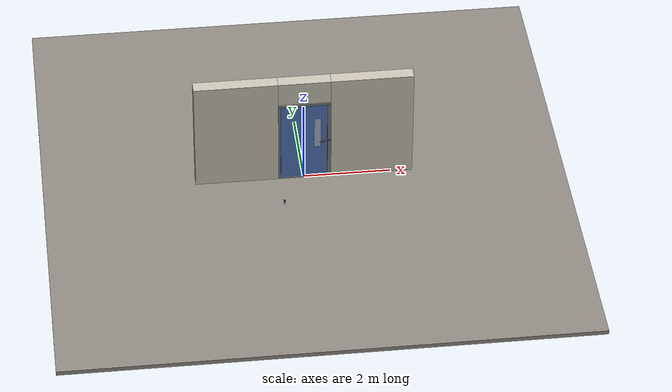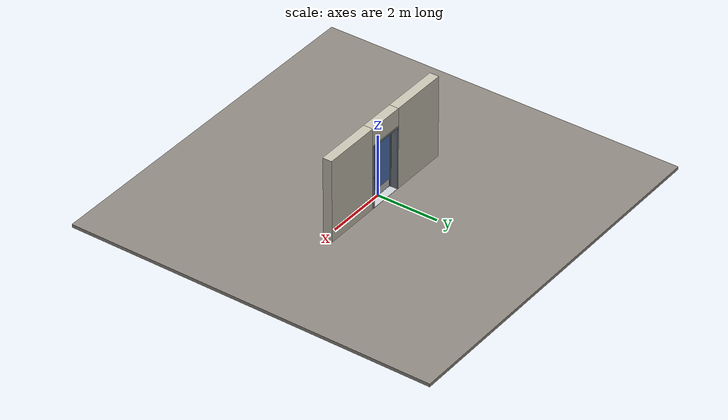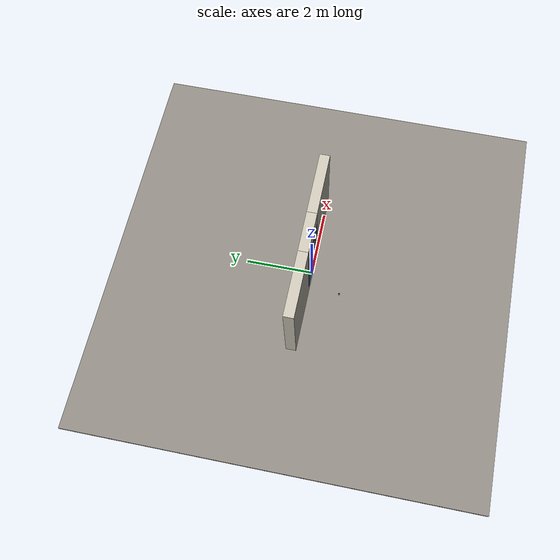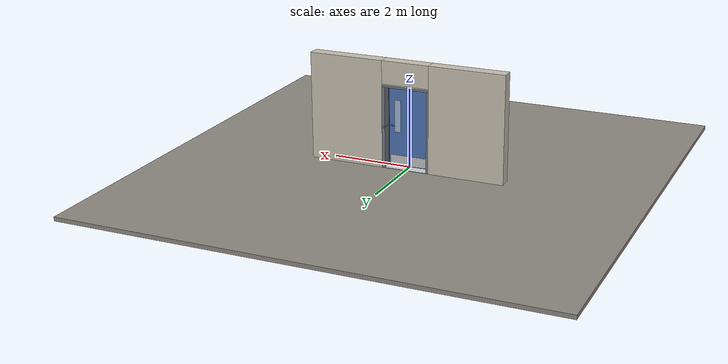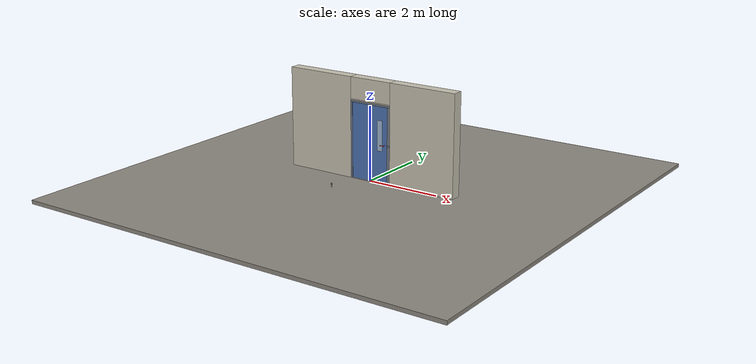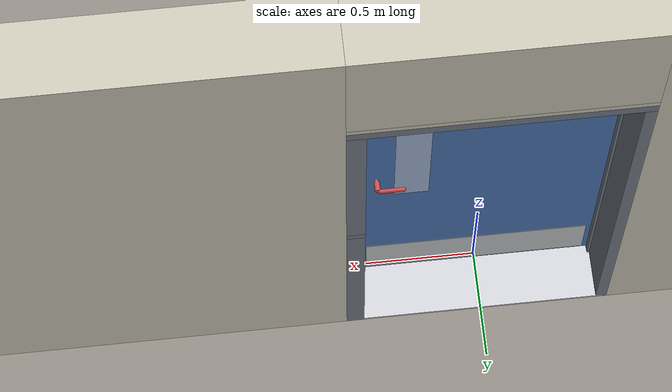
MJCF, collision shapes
<?xml version="1.0" ?>
<mujoco model="db0355_swing_single_full">
  <compiler angle="radian" meshdir="../../hardware" texturedir="../../textures" autolimits="true" inertiafromgeom="false"/>
  <option timestep="0.002" integrator="implicitfast" cone="elliptic" impratio="10" noslip_iterations="3">
    <flag multiccd="enable"/>
  </option>
  <size memory="16M"/>
  <default>
    <geom condim="4" solref="0.005 1" solimp="0.95 0.99 0.001"/>
    <joint solreflimit="0.005 1" solimplimit="0.95 0.99 0.001"/>
    <tendon solreflimit="0.005 1"/>
    <equality solref="0.002 1"/>
  </default>
  <visual>
    <headlight ambient="0.4 0.4 0.4" diffuse="0.7 0.7 0.7" specular="0.2 0.2 0.2"/>
    <quality shadowsize="4096"/>
    <map znear="0.01" zfar="60"/>
  </visual>
  <asset>
    <mesh name="hinge_e22b26c0c1" file="hinge_e22b26c0c1.obj"/>
    <mesh name="hinge_jamb_e1d088f8dc" file="hinge_jamb_e1d088f8dc.obj"/>
    <mesh name="lever_6268dcb28c" file="lever_6268dcb28c.obj"/>
    <material name="mat_floor" rgba="0.55 0.53 0.5 1" specular="0.2" shininess="0.15" reflectance="0"/>
    <material name="mat_wall" rgba="0.78 0.76 0.7 1" specular="0.2" shininess="0.1" reflectance="0"/>
    <material name="mat_leaf" rgba="0.3 0.45 0.7 1" specular="0.2" shininess="0.59" reflectance="0"/>
    <material name="mat_glass" rgba="0.9 0.93 0.95 0.6" specular="0.2" shininess="0.5" reflectance="0.1"/>
    <material name="mat_hinge" rgba="0.65 0.66 0.68 1" specular="0.74" shininess="0.5" reflectance="0.36"/>
    <material name="mat_op_stainless" rgba="0.75 0.76 0.77 1" specular="0.8" shininess="0.65" reflectance="0.4"/>
    <material name="mat_trim" rgba="0.85 0.66 0.3 1" specular="0.8" shininess="0.75" reflectance="0.4"/>
    <material name="mat_bolt" rgba="0.85 0.66 0.3 1" specular="0.8" shininess="0.75" reflectance="0.4"/>
    <material name="mat_frame" rgba="0.45 0.48 0.52 1" specular="0.32" shininess="0.6" reflectance="0.08"/>
    <material name="mat_threshold" rgba="0.8 0.81 0.83 1" specular="0.8" shininess="0.6" reflectance="0.4"/>
    <material name="mat_kick" rgba="0.75 0.76 0.77 1" specular="0.8" shininess="0.65" reflectance="0.4"/>
    <material name="mat_bumper_stop" rgba="0.08 0.08 0.08 1" specular="0.2" shininess="0.1" reflectance="0"/>
    <material name="mat_stop_base" rgba="0.9 0.9 0.92 1" specular="0.8" shininess="0.9" reflectance="0.4"/>
    <texture name="skybox" type="skybox" builtin="gradient" rgb1="0.6 0.7 0.85" rgb2="0.9 0.92 0.95" width="256" height="256"/>
  </asset>
  <worldbody>
    <light name="sun" pos="1.5 -2.5 4" dir="-0.3 0.5 -0.8" directional="true" diffuse="0.8 0.8 0.8" specular="0.3 0.3 0.3" castshadow="true"/>
    <light name="fill" pos="-1.5 2.5 3" dir="0.3 -0.5 -0.7" directional="true" diffuse="0.35 0.35 0.4" castshadow="false"/>
    <camera name="robot_view" pos="0 -2.421187 1.734312" xyaxes="1 0 0 0 0.26963 0.962964" fovy="52"/>
    <camera name="far_view" pos="0 2.663187 1.734312" xyaxes="-1 0 0 0 -0.26963 0.962964" fovy="52"/>
    <camera name="iso" pos="1.932062 -2.014438 2.141063" xyaxes="0.741536 0.670913 0 -0.242917 0.268487 0.932151" fovy="46"/>
    <camera name="detail_handle" pos="0.547 -0.877 1.32" xyaxes="0.97561 0.219512 0 -0.070934 0.315262 0.94635" fovy="38"/>
    <geom name="floor" type="box" size="6 6 0.05" pos="0 0 -0.05" material="mat_floor" group="0" contype="1" conaffinity="1" friction="0.8 0.005 0.0001" density="2400"/>
    <geom name="wall_left" type="box" size="0.9565 0.15 1.35" pos="-1.5435 0.121 1.35" material="mat_wall" group="0" contype="1" conaffinity="1" friction="0.6 0.005 0.0001" density="800"/>
    <geom name="wall_right" type="box" size="0.9415 0.15 1.35" pos="1.5585 0.121 1.35" material="mat_wall" group="0" contype="1" conaffinity="1" friction="0.6 0.005 0.0001" density="800"/>
    <geom name="wall_header" type="box" size="0.602 0.15 0.2875" pos="0.015 0.121 2.4125" material="mat_wall" group="0" contype="1" conaffinity="1" friction="0.6 0.005 0.0001" density="800"/>
    <geom name="hinge_0_jamb" type="mesh" mesh="hinge_jamb_e1d088f8dc" pos="-0.534 -0.029 0.267" material="mat_hinge" group="1" contype="0" conaffinity="0" density="7850"/>
    <geom name="hinge_1_jamb" type="mesh" mesh="hinge_jamb_e1d088f8dc" pos="-0.534 -0.029 1.029" material="mat_hinge" group="1" contype="0" conaffinity="0" density="7850"/>
    <geom name="hinge_2_jamb" type="mesh" mesh="hinge_jamb_e1d088f8dc" pos="-0.534 -0.029 1.861" material="mat_hinge" group="1" contype="0" conaffinity="0" density="7850"/>
    <geom name="jamb_hinge" type="box" size="0.025 0.15 1.0225" pos="-0.562 0.121 1.0225" material="mat_frame" group="0" contype="1" conaffinity="1" friction="0.6 0.005 0.0001" density="300"/>
    <geom name="strike_1040_wall_n" type="box" size="0.04 0.13075 0.0183" pos="0.577 0.14025 1.04" material="mat_frame" group="0" contype="1" conaffinity="1" friction="0.6 0.005 0.0001" density="300"/>
    <geom name="strike_1040_wall_p" type="box" size="0.04 0.008 0.0183" pos="0.577 -0.0175 1.04" material="mat_frame" group="0" contype="1" conaffinity="1" friction="0.6 0.005 0.0001" density="300"/>
    <geom name="strike_1040_ramp" type="box" size="0.04 0.018028 0.0183" pos="0.580282 -0.018312 1.04" quat="0.957092 0 0 0.289784" material="mat_frame" group="0" contype="1" conaffinity="1" friction="0.12 0.005 0.0001" density="300"/>
    <geom name="strike_1040_back" type="box" size="0.0285 0.0095 0.0183" pos="0.5885 0 1.04" material="mat_frame" group="0" contype="1" conaffinity="1" friction="0.6 0.005 0.0001" density="300"/>
    <geom name="jamb_strike_0" type="box" size="0.04 0.15 0.51085" pos="0.577 0.121 0.51085" material="mat_frame" group="0" contype="1" conaffinity="1" friction="0.6 0.005 0.0001" density="300"/>
    <geom name="jamb_strike_1" type="box" size="0.04 0.15 0.49335" pos="0.577 0.121 1.55165" material="mat_frame" group="0" contype="1" conaffinity="1" friction="0.6 0.005 0.0001" density="300"/>
    <geom name="jamb_head" type="box" size="0.602 0.15 0.025" pos="0.015 0.121 2.07" material="mat_frame" group="0" contype="1" conaffinity="1" friction="0.6 0.005 0.0001" density="300"/>
    <geom name="head_stud" type="box" size="0.602 0.15 0.015" pos="0.015 0.121 2.11" material="mat_wall" group="0" contype="1" conaffinity="1" friction="0.6 0.005 0.0001" density="500"/>
    <geom name="stop_hinge" type="box" size="0.0055 0.016 1.0225" pos="-0.5315 0.0385 1.0225" material="mat_frame" group="0" contype="1" conaffinity="1" friction="0.6 0.005 0.0001" density="300"/>
    <geom name="stop_strike" type="box" size="0.0055 0.016 1.0225" pos="0.5315 0.0385 1.0225" material="mat_frame" group="0" contype="1" conaffinity="1" friction="0.6 0.005 0.0001" density="300"/>
    <geom name="stop_head" type="box" size="0.537 0.016 0.0055" pos="0 0.0385 2.0395" material="mat_frame" group="0" contype="1" conaffinity="1" friction="0.6 0.005 0.0001" density="300"/>
    <geom name="threshold" type="box" size="0.587 0.15 0.0065" pos="0 0.121 0.0065" material="mat_threshold" group="0" contype="1" conaffinity="1" friction="0.5 0.005 0.0001" density="2700"/>
    <geom name="door_stop_base" type="cylinder" size="0.022 0.003" pos="-0.55 -0.93595 0.003" material="mat_stop_base" group="0" contype="1" conaffinity="1" friction="0.6 0.005 0.0001" density="7850"/>
    <geom name="door_stop_post" type="cylinder" size="0.012 0.0255" pos="-0.55 -0.93595 0.0315" material="mat_stop_base" group="0" contype="1" conaffinity="1" friction="0.6 0.005 0.0001" density="7850"/>
    <geom name="door_stop_bumper" type="cylinder" size="0.022 0.02" pos="-0.55 -0.93595 0.077" material="mat_bumper_stop" group="0" contype="1" conaffinity="1" friction="0.6 0.005 0.0001" density="1100"/>
    <site name="approach_point" pos="0 -1.5 0" quat="1 0 0 0" size="0.05" rgba="0.2 0.9 0.2 0.5" group="4"/>
    <site name="goal_point" pos="0 1.5 0" quat="1 0 0 0" size="0.05" rgba="0.2 0.9 0.2 0.5" group="4"/>
    <site name="door_plane_center" pos="0 0 1.0225" quat="1 0 0 0" size="0.02" rgba="0.2 0.9 0.2 0.5" group="4"/>
    <body name="leaf" pos="-0.537 0 0">
      <inertial pos="0.531259 0.000832 0.990311" mass="72.270951" quat="0.500551 -0.498837 -0.499967 -0.500643" diaginertia="6.976098845 26.020700022 32.971011469"/>
      <joint name="leaf_hinge" type="hinge" axis="0 0 -1" pos="0.003 -0.029 0" limited="true" range="0 1.570796" damping="0.525663" frictionloss="0.226436" armature="0.02"/>
      <geom name="leaf_slab" type="box" size="0.5335 0.022 1.012" pos="0.5365 0 1.029" material="mat_leaf" group="0" contype="1" conaffinity="1" friction="0.35 0.005 0.0001" density="1"/>
      <geom name="leaf_glass_0" type="box" size="0.075 0.0228 0.4048" pos="0.84763 0 1.27188" material="mat_glass" group="1" contype="0" conaffinity="0" density="1"/>
      <geom name="hinge_0" type="mesh" mesh="hinge_e22b26c0c1" pos="0.003 -0.029 0.267" material="mat_hinge" group="1" contype="0" conaffinity="0" density="7850"/>
      <geom name="hinge_1" type="mesh" mesh="hinge_e22b26c0c1" pos="0.003 -0.029 1.029" material="mat_hinge" group="1" contype="0" conaffinity="0" density="7850"/>
      <geom name="hinge_2" type="mesh" mesh="hinge_e22b26c0c1" pos="0.003 -0.029 1.861" material="mat_hinge" group="1" contype="0" conaffinity="0" density="7850"/>
      <geom name="leaf_latch_bolt_faceplate" type="box" size="0.0006 0.014 0.0283" pos="1.0694 0 1.04" material="mat_bolt" group="1" contype="0" conaffinity="0" density="8500"/>
      <geom name="kick_plate_p" type="box" size="0.5035 0.0008 0.125" pos="0.5365 0.0228 0.152" material="mat_kick" group="2" contype="0" conaffinity="0" density="7900"/>
      <site name="leaf_edge_mid" pos="1.07 0 1.012" quat="1 0 0 0" size="0.02" rgba="0.2 0.9 0.2 0.5" group="4"/>
      <body name="leaf_handle" pos="1 0 1.04">
        <inertial pos="-0.035149 0 0" mass="1.038236" quat="0 0.707107 0.707107 0" diaginertia="0.002348364 0.00382535 0.005606687"/>
        <joint name="leaf_handle_hinge" type="hinge" axis="0 -1 0" limited="true" range="0 0.96" damping="0.255791" frictionloss="0.05" stiffness="1.2" springref="-0.583333" armature="0.01"/>
        <geom name="leaf_handle_spindle" type="cylinder" size="0.006 0.03" pos="0 0 0" quat="0.707107 -0.707107 0 0" material="mat_op_stainless" group="1" contype="0" conaffinity="0" density="7850"/>
        <geom name="leaf_handle_lever_n" type="mesh" mesh="lever_6268dcb28c" pos="0 -0.022 0" quat="0.707107 0.707107 0 0" material="mat_op_stainless" group="1" contype="0" conaffinity="0" density="3000"/>
        <geom name="leaf_handle_lever_col_n" type="capsule" size="0.0095 0.0505" pos="-0.06 -0.077 0" quat="0.707107 0 -0.707107 0" material="mat_op_stainless" group="3" contype="1" conaffinity="1" rgba="0.8 0.3 0.3 0.25" friction="0.7 0.01 0.0001" density="3000"/>
        <geom name="leaf_handle_hub_col_n" type="cylinder" size="0.012 0.022" pos="0 -0.052 0" quat="0.707107 -0.707107 0 0" material="mat_op_stainless" group="3" contype="1" conaffinity="1" rgba="0.8 0.3 0.3 0.25" friction="0.6 0.005 0.0001" density="3000"/>
        <geom name="leaf_handle_lever_p" type="mesh" mesh="lever_6268dcb28c" pos="0 0.022 0" quat="-0.707107 0.707107 0 0" material="mat_op_stainless" group="1" contype="0" conaffinity="0" density="3000"/>
        <geom name="leaf_handle_lever_col_p" type="capsule" size="0.0095 0.0505" pos="-0.06 0.077 0" quat="0.707107 0 -0.707107 0" material="mat_op_stainless" group="3" contype="1" conaffinity="1" rgba="0.8 0.3 0.3 0.25" friction="0.7 0.01 0.0001" density="3000"/>
        <geom name="leaf_handle_hub_col_p" type="cylinder" size="0.012 0.022" pos="0 0.052 0" quat="0.707107 -0.707107 0 0" material="mat_op_stainless" group="3" contype="1" conaffinity="1" rgba="0.8 0.3 0.3 0.25" friction="0.6 0.005 0.0001" density="3000"/>
        <site name="leaf_handle_grip_n" pos="-0.096 -0.077 0" quat="1 0 0 0" size="0.012" rgba="0.2 0.9 0.2 0.5" group="4"/>
        <site name="leaf_handle_grip_p" pos="-0.096 0.077 0" quat="1 0 0 0" size="0.012" rgba="0.2 0.9 0.2 0.5" group="4"/>
      </body>
      <body name="leaf_latch_bolt" pos="1.07 0 1.04">
        <inertial pos="-0.0055 0 0" mass="0.074627" quat="0.92388 -0.382683 0 0" diaginertia="0.000002271 0.000013255 0.000013255"/>
        <joint name="leaf_latch_bolt_slide" type="slide" axis="-1 0 0" limited="true" range="0 0.019" damping="2" frictionloss="0.3" stiffness="600" springref="-0.01" armature="0.1"/>
        <geom name="leaf_latch_bolt_capsule" type="capsule" size="0.008 0.0165" pos="-0.0055 0 0" quat="0.707107 0 0.707107 0" material="mat_bolt" group="0" contype="1" conaffinity="1" friction="0.2 0.005 0.0001" density="8500"/>
      </body>
    </body>
  </worldbody>
  <tendon>
    <fixed name="leaf_latch_bolt_coupling" limited="true" range="0 10">
      <joint joint="leaf_latch_bolt_slide" coef="1"/>
      <joint joint="leaf_handle_hinge" coef="-0.020879"/>
    </fixed>
  </tendon>
  <sensor>
    <jointpos name="leaf_hinge_pos" joint="leaf_hinge"/>
    <jointvel name="leaf_hinge_vel" joint="leaf_hinge"/>
    <jointpos name="leaf_handle_hinge_pos" joint="leaf_handle_hinge"/>
    <jointvel name="leaf_handle_hinge_vel" joint="leaf_handle_hinge"/>
    <jointpos name="leaf_latch_bolt_slide_pos" joint="leaf_latch_bolt_slide"/>
    <jointvel name="leaf_latch_bolt_slide_vel" joint="leaf_latch_bolt_slide"/>
  </sensor>
</mujoco>
